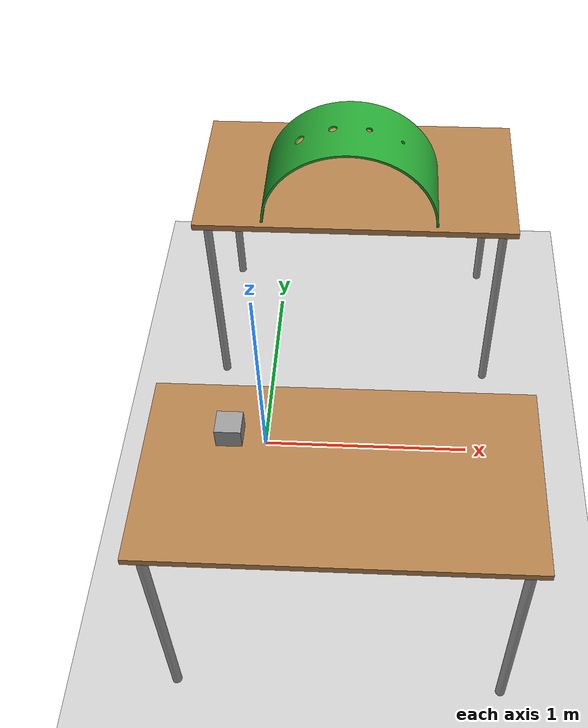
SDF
<sdf version='1.6'>
  <world name='default'>
    <light name='sun' type='directional'>
      <cast_shadows>1</cast_shadows>
      <pose frame=''>0 0 10 0 -0 0</pose>
      <diffuse>0.8 0.8 0.8 1</diffuse>
      <specular>0.2 0.2 0.2 1</specular>
      <attenuation>
        <range>1000</range>
        <constant>0.9</constant>
        <linear>0.01</linear>
        <quadratic>0.001</quadratic>
      </attenuation>
      <direction>-0.5 0.1 -0.9</direction>
    </light>
    <model name='ground_plane'>
      <static>1</static>
      <link name='link'>
        <collision name='collision'>
          <geometry>
            <plane>
              <normal>0 0 1</normal>
              <size>100 100</size>
            </plane>
          </geometry>
          <surface>
            <friction>
              <ode>
                <mu>100</mu>
                <mu2>50</mu2>
              </ode>
              <torsional>
                <ode/>
              </torsional>
            </friction>
            <contact>
              <ode/>
            </contact>
            <bounce/>
          </surface>
          <max_contacts>10</max_contacts>
        </collision>
        <visual name='visual'>
          <cast_shadows>0</cast_shadows>
          <geometry>
            <plane>
              <normal>0 0 1</normal>
              <size>100 100</size>
            </plane>
          </geometry>
          <material>
            <script>
              <uri>file://media/materials/scripts/gazebo.material</uri>
              <name>Gazebo/Grey</name>
            </script>
          </material>
        </visual>
        <self_collide>0</self_collide>
        <enable_wind>0</enable_wind>
        <kinematic>0</kinematic>
      </link>
    </model>
    <gravity>0 0 -9.8</gravity>
    <magnetic_field>6e-06 2.3e-05 -4.2e-05</magnetic_field>
    <atmosphere type='adiabatic'/>
    <physics name='default_physics' default='0' type='ode'>
      <max_step_size>0.001</max_step_size>
      <real_time_factor>1</real_time_factor>
      <real_time_update_rate>1000</real_time_update_rate>
    </physics>
    <scene>
      <ambient>0.4 0.4 0.4 1</ambient>
      <background>0.7 0.7 0.7 1</background>
      <shadows>0</shadows>
    </scene>
    <audio>
      <device>default</device>
    </audio>
    <wind/>
    <spherical_coordinates>
      <surface_model>EARTH_WGS84</surface_model>
      <latitude_deg>0</latitude_deg>
      <longitude_deg>0</longitude_deg>
      <elevation>0</elevation>
      <heading_deg>0</heading_deg>
    </spherical_coordinates>
    <model name='table1'>
      <static>1</static>
      <link name='link'>
        <collision name='surface'>
          <pose frame=''>0 0 1 0 -0 0</pose>
          <geometry>
            <box>
              <size>1.5 0.8 0.03</size>
            </box>
          </geometry>
          <surface>
            <friction>
              <ode>
                <mu>0.6</mu>
                <mu2>0.6</mu2>
              </ode>
              <torsional>
                <ode/>
              </torsional>
            </friction>
            <contact>
              <ode/>
            </contact>
            <bounce/>
          </surface>
          <max_contacts>10</max_contacts>
        </collision>
        <visual name='visual1'>
          <pose frame=''>0 0 1 0 -0 0</pose>
          <geometry>
            <box>
              <size>1.5 0.8 0.03</size>
            </box>
          </geometry>
          <material>
            <script>
              <uri>file://media/materials/scripts/gazebo.material</uri>
              <name>Gazebo/Wood</name>
            </script>
          </material>
        </visual>
        <collision name='front_left_leg'>
          <pose frame=''>0.68 0.38 0.5 0 -0 0</pose>
          <geometry>
            <cylinder>
              <radius>0.02</radius>
              <length>1</length>
            </cylinder>
          </geometry>
        </collision>
        <visual name='front_left_leg'>
          <pose frame=''>0.68 0.38 0.5 0 -0 0</pose>
          <geometry>
            <cylinder>
              <radius>0.02</radius>
              <length>1</length>
            </cylinder>
          </geometry>
          <material>
            <script>
              <uri>file://media/materials/scripts/gazebo.material</uri>
              <name>Gazebo/Grey</name>
            </script>
          </material>
        </visual>
        <collision name='front_right_leg'>
          <pose frame=''>0.68 -0.38 0.5 0 -0 0</pose>
          <geometry>
            <cylinder>
              <radius>0.02</radius>
              <length>1</length>
            </cylinder>
          </geometry>
        </collision>
        <visual name='front_right_leg'>
          <pose frame=''>0.68 -0.38 0.5 0 -0 0</pose>
          <geometry>
            <cylinder>
              <radius>0.02</radius>
              <length>1</length>
            </cylinder>
          </geometry>
          <material>
            <script>
              <uri>file://media/materials/scripts/gazebo.material</uri>
              <name>Gazebo/Grey</name>
            </script>
          </material>
        </visual>
        <collision name='back_right_leg'>
          <pose frame=''>-0.68 -0.38 0.5 0 -0 0</pose>
          <geometry>
            <cylinder>
              <radius>0.02</radius>
              <length>1</length>
            </cylinder>
          </geometry>
        </collision>
        <visual name='back_right_leg'>
          <pose frame=''>-0.68 -0.38 0.5 0 -0 0</pose>
          <geometry>
            <cylinder>
              <radius>0.02</radius>
              <length>1</length>
            </cylinder>
          </geometry>
          <material>
            <script>
              <uri>file://media/materials/scripts/gazebo.material</uri>
              <name>Gazebo/Grey</name>
            </script>
          </material>
        </visual>
        <collision name='back_left_leg'>
          <pose frame=''>-0.68 0.38 0.5 0 -0 0</pose>
          <geometry>
            <cylinder>
              <radius>0.02</radius>
              <length>1</length>
            </cylinder>
          </geometry>
        </collision>
        <visual name='back_left_leg'>
          <pose frame=''>-0.68 0.38 0.5 0 -0 0</pose>
          <geometry>
            <cylinder>
              <radius>0.02</radius>
              <length>1</length>
            </cylinder>
          </geometry>
          <material>
            <script>
              <uri>file://media/materials/scripts/gazebo.material</uri>
              <name>Gazebo/Grey</name>
            </script>
          </material>
        </visual>
        <self_collide>0</self_collide>
        <enable_wind>0</enable_wind>
        <kinematic>0</kinematic>
      </link>
      <pose frame=''>0.425088 -0.872043 0 0 0 0</pose>
    </model>
    <model name='table2'>
      <static>1</static>
      <link name='link'>
        <collision name='surface'>
          <pose frame=''>0 0 1 0 -0 0</pose>
          <geometry>
            <box>
              <size>1.5 0.8 0.03</size>
            </box>
          </geometry>
          <surface>
            <friction>
              <ode>
                <mu>0.6</mu>
                <mu2>0.6</mu2>
              </ode>
              <torsional>
                <ode/>
              </torsional>
            </friction>
            <contact>
              <ode/>
            </contact>
            <bounce/>
          </surface>
          <max_contacts>10</max_contacts>
        </collision>
        <visual name='visual1'>
          <pose frame=''>0 0 1 0 -0 0</pose>
          <geometry>
            <box>
              <size>1.5 0.8 0.03</size>
            </box>
          </geometry>
          <material>
            <script>
              <uri>file://media/materials/scripts/gazebo.material</uri>
              <name>Gazebo/Wood</name>
            </script>
          </material>
        </visual>
        <collision name='front_left_leg'>
          <pose frame=''>0.68 0.38 0.5 0 -0 0</pose>
          <geometry>
            <cylinder>
              <radius>0.02</radius>
              <length>1</length>
            </cylinder>
          </geometry>
        </collision>
        <visual name='front_left_leg'>
          <pose frame=''>0.68 0.38 0.5 0 -0 0</pose>
          <geometry>
            <cylinder>
              <radius>0.02</radius>
              <length>1</length>
            </cylinder>
          </geometry>
          <material>
            <script>
              <uri>file://media/materials/scripts/gazebo.material</uri>
              <name>Gazebo/Grey</name>
            </script>
          </material>
        </visual>
        <collision name='front_right_leg'>
          <pose frame=''>0.68 -0.38 0.5 0 -0 0</pose>
          <geometry>
            <cylinder>
              <radius>0.02</radius>
              <length>1</length>
            </cylinder>
          </geometry>
        </collision>
        <visual name='front_right_leg'>
          <pose frame=''>0.68 -0.38 0.5 0 -0 0</pose>
          <geometry>
            <cylinder>
              <radius>0.02</radius>
              <length>1</length>
            </cylinder>
          </geometry>
          <material>
            <script>
              <uri>file://media/materials/scripts/gazebo.material</uri>
              <name>Gazebo/Grey</name>
            </script>
          </material>
        </visual>
        <collision name='back_right_leg'>
          <pose frame=''>-0.68 -0.38 0.5 0 -0 0</pose>
          <geometry>
            <cylinder>
              <radius>0.02</radius>
              <length>1</length>
            </cylinder>
          </geometry>
        </collision>
        <visual name='back_right_leg'>
          <pose frame=''>-0.68 -0.38 0.5 0 -0 0</pose>
          <geometry>
            <cylinder>
              <radius>0.02</radius>
              <length>1</length>
            </cylinder>
          </geometry>
          <material>
            <script>
              <uri>file://media/materials/scripts/gazebo.material</uri>
              <name>Gazebo/Grey</name>
            </script>
          </material>
        </visual>
        <collision name='back_left_leg'>
          <pose frame=''>-0.68 0.38 0.5 0 -0 0</pose>
          <geometry>
            <cylinder>
              <radius>0.02</radius>
              <length>1</length>
            </cylinder>
          </geometry>
        </collision>
        <visual name='back_left_leg'>
          <pose frame=''>-0.68 0.38 0.5 0 -0 0</pose>
          <geometry>
            <cylinder>
              <radius>0.02</radius>
              <length>1</length>
            </cylinder>
          </geometry>
          <material>
            <script>
              <uri>file://media/materials/scripts/gazebo.material</uri>
              <name>Gazebo/Grey</name>
            </script>
          </material>
        </visual>
        <self_collide>0</self_collide>
        <enable_wind>0</enable_wind>
        <kinematic>0</kinematic>
      </link>
      <pose frame=''>0.425088 0.872043 0 0 0 0</pose>
    </model>
    <gui fullscreen='0'>
      <camera name='user_camera'>
        <pose frame=''>0.675966 -4.02037 2.36311 0 0.275643 1.6274</pose>
        <view_controller>orbit</view_controller>
        <projection_type>perspective</projection_type>
      </camera>
    </gui>
    <model name='cube'>
      <pose frame=''>0 -0.72 1.0493 0 0 0</pose>
      <link name='link'>
        <inertial>
          <mass>1</mass>
          <inertia>
            <ixx>0.166667</ixx>
            <ixy>0</ixy>
            <ixz>0</ixz>
            <iyy>0.166667</iyy>
            <iyz>0</iyz>
            <izz>0.166667</izz>
          </inertia>
        </inertial>
        <self_collide>0</self_collide>
        <kinematic>0</kinematic>
        <visual name='visual'>
          <geometry>
            <box>
              <size>0.1 0.1 0.1</size>
            </box>
          </geometry>
          <material>
            <script>
              <name>Gazebo/Grey</name>
              <uri>file://media/materials/scripts/gazebo.material</uri>
            </script>
          </material>
          <pose frame=''>0 0 0 0 -0 0</pose>
          <transparency>0</transparency>
          <cast_shadows>1</cast_shadows>
        </visual>
        <collision name='collision'>
          <laser_retro>0</laser_retro>
          <max_contacts>10</max_contacts>
          <pose frame=''>0 0 0 0 -0 0</pose>
          <geometry>
            <box>
              <size>0.1 0.1 0.1</size>
            </box>
          </geometry>
          <surface>
            <friction>
              <ode>
                <mu>1</mu>
                <mu2>1</mu2>
                <fdir1>0 0 0</fdir1>
                <slip1>0</slip1>
                <slip2>0</slip2>
              </ode>
              <torsional>
                <coefficient>1</coefficient>
                <patch_radius>0</patch_radius>
                <surface_radius>0</surface_radius>
                <use_patch_radius>1</use_patch_radius>
                <ode>
                  <slip>0</slip>
                </ode>
              </torsional>
            </friction>
            <bounce>
              <restitution_coefficient>0</restitution_coefficient>
              <threshold>1e+06</threshold>
            </bounce>
            <contact>
              <collide_without_contact>0</collide_without_contact>
              <collide_without_contact_bitmask>1</collide_without_contact_bitmask>
              <collide_bitmask>1</collide_bitmask>
              <ode>
                <soft_cfm>0</soft_cfm>
                <soft_erp>0.2</soft_erp>
                <kp>1e+13</kp>
                <kd>1</kd>
                <max_vel>0.01</max_vel>
                <min_depth>0</min_depth>
              </ode>
              <bullet>
                <split_impulse>1</split_impulse>
                <split_impulse_penetration_threshold>-0.01</split_impulse_penetration_threshold>
                <soft_cfm>0</soft_cfm>
                <soft_erp>0.2</soft_erp>
                <kp>1e+13</kp>
                <kd>1</kd>
              </bullet>
            </contact>
          </surface>
        </collision>
      </link>
      <static>0</static>
      <pose frame=''>-1.65768 0.728145 0.499995 1e-05 -0 0</pose>
    </model>
    <model name='mounting_dock'>
      <pose frame=''>0.4 0.7 1.25094 0 0 0</pose>
      <link name='mounting_dock_link'>
        <inertial>
          <mass>1</mass>
          <inertia>
            <ixx>0.003272</ixx>
            <ixy>0</ixy>
            <ixz>0</ixz>
            <iyy>0.001119</iyy>
            <iyz>0</iyz>
            <izz>0.003325</izz>
          </inertia>
        </inertial>
        <collision name='collision'>
          <geometry>
            <mesh>
              <uri>model://kuka_barrett_gazebo/objects/mounting_dock/meshes/mounting_dock.stl</uri>
            </mesh>
          </geometry>
        </collision>
        <visual name='visual'>
          <geometry>
            <mesh>
              <uri>model://kuka_barrett_gazebo/objects/mounting_dock/meshes/mounting_dock.stl</uri>
            </mesh>
          </geometry>
          <material>
            <script>
              <name>Gazebo/Green</name>
              <uri>file://media/materials/scripts/gazebo.material</uri>
            </script>
          </material>
        </visual>
        <self_collide>0</self_collide>
        <enable_wind>0</enable_wind>
        <kinematic>0</kinematic>
      </link>
      <static>true</static>
    </model>
  </world>
</sdf>
